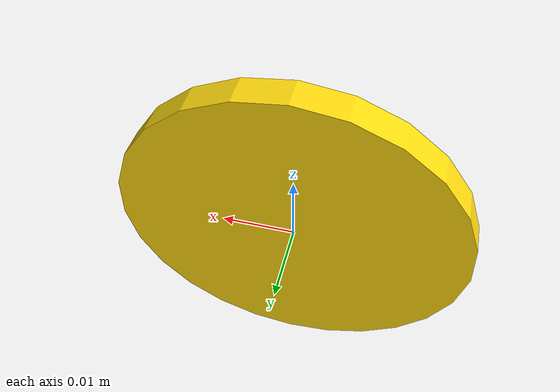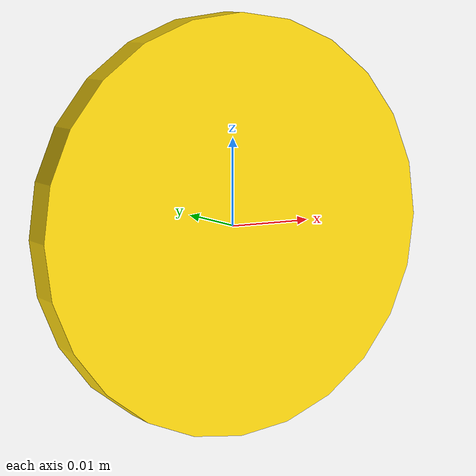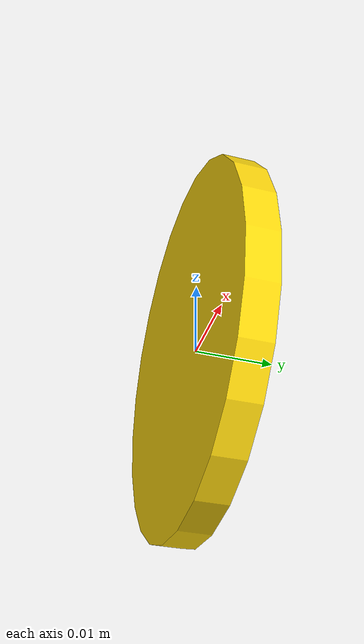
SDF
<?xml version="1.0" ?>
<sdf version="1.10">
  <model name="autorace_lamp_yellow">
    <!-- Not static: set_pose has to be able to teleport it. No collision and
         no gravity so it never disturbs the robot. -->
    <static>false</static>
    <link name="lamp">
      <gravity>false</gravity>
      <kinematic>true</kinematic>
      <inertial>
        <mass>0.001</mass>
        <inertia><ixx>1e-6</ixx><iyy>1e-6</iyy><izz>1e-6</izz>
          <ixy>0</ixy><ixz>0</ixz><iyz>0</iyz></inertia>
      </inertial>
      <visual name="visual">
        <pose>0 0 0 1.5708 0 0</pose>
        <geometry><cylinder><radius>0.024</radius><length>0.004</length></cylinder></geometry>
        <material>
          <ambient>1.0 0.85 0.05 1</ambient>
          <diffuse>1.0 0.85 0.05 1</diffuse>
          <specular>0.2 0.2 0.2 1</specular>
          <emissive>1.0 0.85 0.05 1</emissive>
        </material>
      </visual>
    </link>
  </model>
</sdf>
